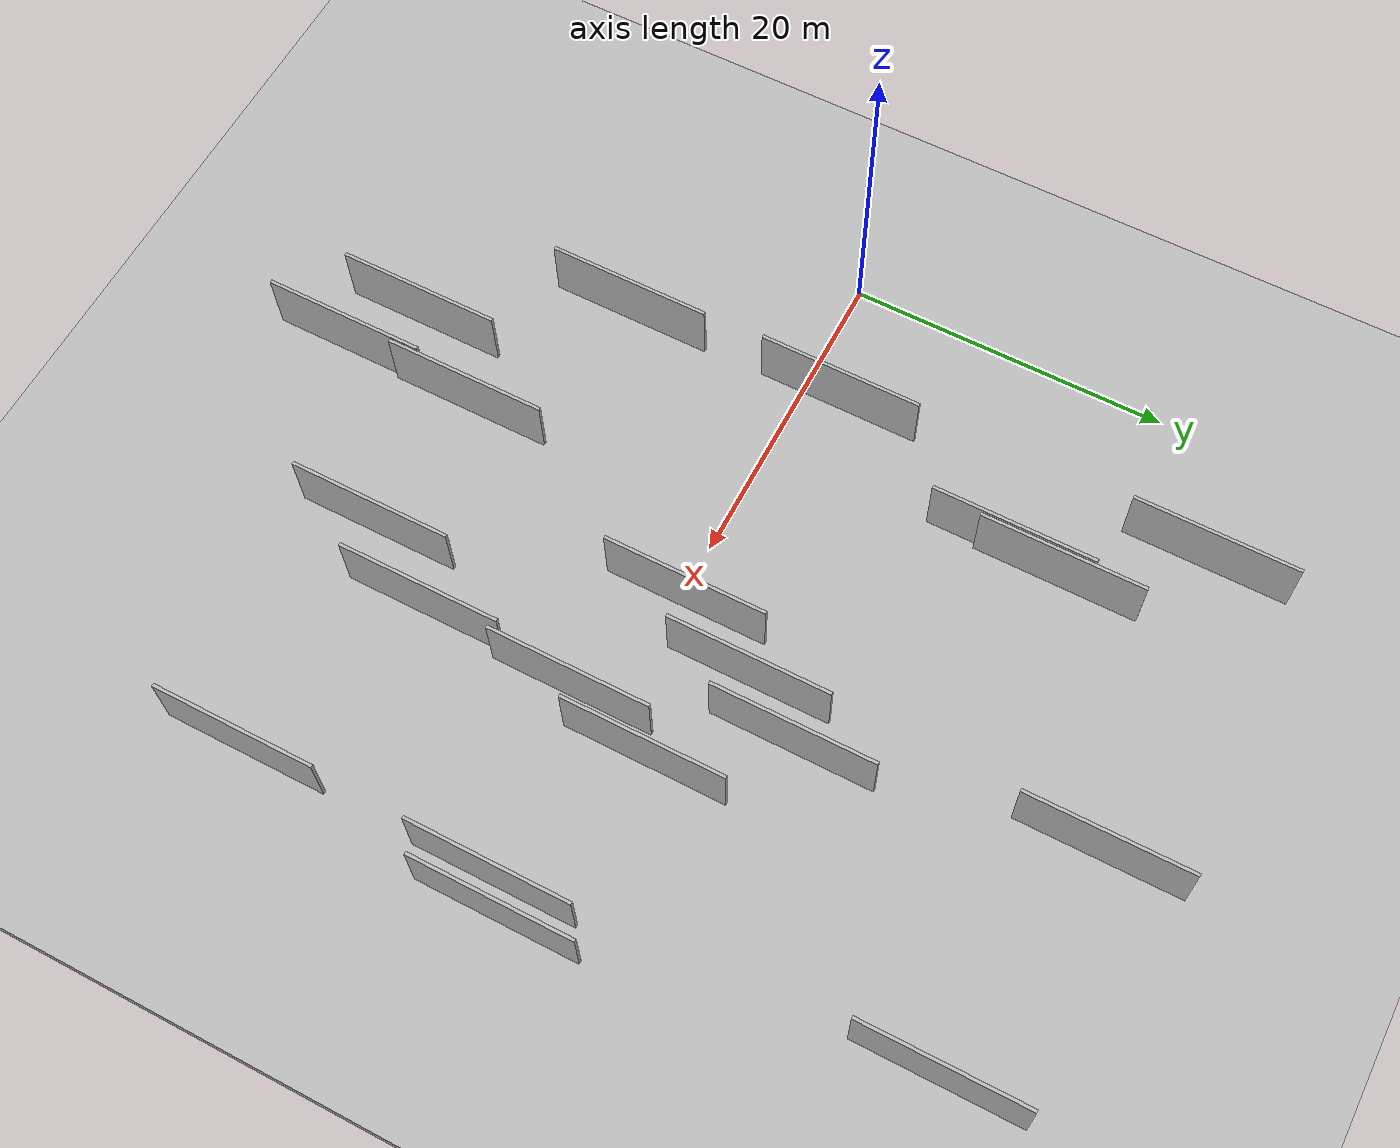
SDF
<?xml version="1.0" encoding="utf-8"?>

<sdf version="1.6">

   <world name="default">

      <gui fullscreen="0">

         <camera name="user_camera">

            <pose>-15 0 4.57585 0 0 0</pose>

            <view_controller>orbit</view_controller>

         </camera>

      </gui>

      <scene>

         <sky>

           <clouds>

             <speed>12</speed>

           </clouds>

         </sky>

         <ambient>0.4 0.4 0.4 1</ambient>

         <background>0.7 0.7 0.7 1</background>

         <shadows>1</shadows>

      </scene>

      <gravity>0 0 -9.8066</gravity>

      <magnetic_field>6e-06 2.3e-05 -4.2e-05</magnetic_field>

      <physics default="0" name="default_physics" type="ode">

         <ode>

            <solver>

               <type>quick</type>

               <iters>10</iters>

               <sor>1.0</sor>

               <use_dynamic_moi_rescaling>0</use_dynamic_moi_rescaling>

            </solver>

            <constraints>

               <cfm>0</cfm>

               <erp>0.2</erp>

               <contact_max_correcting_vel>100</contact_max_correcting_vel>

               <contact_surface_layer>0.001</contact_surface_layer>

            </constraints>

         </ode>

         <max_step_size>0.004</max_step_size>

         <real_time_factor>1</real_time_factor>

         <real_time_update_rate>250</real_time_update_rate>

      </physics>

      <light name="sun" type="directional">

         <cast_shadows>1</cast_shadows>

         <pose>0 0 10 0 0 0</pose>

         <diffuse>0.8 0.8 0.8 1</diffuse>

         <specular>0.2 0.2 0.2 1</specular>

         <attenuation>

            <range>1000</range>

            <constant>0.9</constant>

            <linear>0.01</linear>

            <quadratic>0.001</quadratic>

         </attenuation>

         <direction>-0.5 0.1 -0.9</direction>

      </light>

      <include>

         <name>ground_plane_1</name>

         <uri>model://HANNAS_ground_plane</uri>

         <pose>0 0 0  0 0 0</pose>

      </include>

      <include>

         <name>ground_plane_2</name>

         <uri>model://HANNAS_ground_plane</uri>

         <pose>100 0 0  0 0 0</pose>

      </include>

      <model name="HANNAS_wall_1">

         <static>1</static>

         <pose frame="">13.6870 15.7862 2.5 0.000000 0.000000 1.570796</pose>

         <link name="link">

            <pose frame="">0 0 2.00 0 0 0</pose>

            <collision name="collision">

               <geometry>

                  <box>

                     <size>10.00 0.2 4.00</size>

                  </box>

               </geometry>

               <max_contacts>10</max_contacts>

               <surface>

                  <contact>

                     <ode/>

                  </contact>

                  <bounce/>

                  <friction>

                     <torsional>

                        <ode/>

                     </torsional>

                     <ode/>

                  </friction>

               </surface>

            </collision>

            <visual name="visual">

               <cast_shadows>0</cast_shadows>

               <geometry>

                  <box>

                     <size>10.00 0.2 4.00</size>

                  </box>

               </geometry>

               <material>

                  <script>

                     <uri>model://HANNAS_wall/materials/scripts</uri>

                     <uri>model://HANNAS_wall/materials/textures</uri>

                     <name>vrc/HANNAS_wall</name>

                  </script>

               </material>

            </visual>

            <self_collide>0</self_collide>

            <enable_wind>0</enable_wind>

            <kinematic>0</kinematic>

         </link>

      </model>

      <model name="HANNAS_wall_2">

         <static>1</static>

         <pose frame="">28.8380 -16.5964 2.5 0.000000 0.000000 1.570796</pose>

         <link name="link">

            <pose frame="">0 0 2.00 0 0 0</pose>

            <collision name="collision">

               <geometry>

                  <box>

                     <size>10.00 0.2 4.00</size>

                  </box>

               </geometry>

               <max_contacts>10</max_contacts>

               <surface>

                  <contact>

                     <ode/>

                  </contact>

                  <bounce/>

                  <friction>

                     <torsional>

                        <ode/>

                     </torsional>

                     <ode/>

                  </friction>

               </surface>

            </collision>

            <visual name="visual">

               <cast_shadows>0</cast_shadows>

               <geometry>

                  <box>

                     <size>10.00 0.2 4.00</size>

                  </box>

               </geometry>

               <material>

                  <script>

                     <uri>model://HANNAS_wall/materials/scripts</uri>

                     <uri>model://HANNAS_wall/materials/textures</uri>

                     <name>vrc/HANNAS_wall</name>

                  </script>

               </material>

            </visual>

            <self_collide>0</self_collide>

            <enable_wind>0</enable_wind>

            <kinematic>0</kinematic>

         </link>

      </model>

      <model name="HANNAS_wall_3">

         <static>1</static>

         <pose frame="">19.1805 -24.3394 2.5 0.000000 0.000000 1.570796</pose>

         <link name="link">

            <pose frame="">0 0 2.00 0 0 0</pose>

            <collision name="collision">

               <geometry>

                  <box>

                     <size>10.00 0.2 4.00</size>

                  </box>

               </geometry>

               <max_contacts>10</max_contacts>

               <surface>

                  <contact>

                     <ode/>

                  </contact>

                  <bounce/>

                  <friction>

                     <torsional>

                        <ode/>

                     </torsional>

                     <ode/>

                  </friction>

               </surface>

            </collision>

            <visual name="visual">

               <cast_shadows>0</cast_shadows>

               <geometry>

                  <box>

                     <size>10.00 0.2 4.00</size>

                  </box>

               </geometry>

               <material>

                  <script>

                     <uri>model://HANNAS_wall/materials/scripts</uri>

                     <uri>model://HANNAS_wall/materials/textures</uri>

                     <name>vrc/HANNAS_wall</name>

                  </script>

               </material>

            </visual>

            <self_collide>0</self_collide>

            <enable_wind>0</enable_wind>

            <kinematic>0</kinematic>

         </link>

      </model>

      <model name="HANNAS_wall_4">

         <static>1</static>

         <pose frame="">45.4617 0.9145 2.5 0.000000 0.000000 1.570796</pose>

         <link name="link">

            <pose frame="">0 0 2.00 0 0 0</pose>

            <collision name="collision">

               <geometry>

                  <box>

                     <size>10.00 0.2 4.00</size>

                  </box>

               </geometry>

               <max_contacts>10</max_contacts>

               <surface>

                  <contact>

                     <ode/>

                  </contact>

                  <bounce/>

                  <friction>

                     <torsional>

                        <ode/>

                     </torsional>

                     <ode/>

                  </friction>

               </surface>

            </collision>

            <visual name="visual">

               <cast_shadows>0</cast_shadows>

               <geometry>

                  <box>

                     <size>10.00 0.2 4.00</size>

                  </box>

               </geometry>

               <material>

                  <script>

                     <uri>model://HANNAS_wall/materials/scripts</uri>

                     <uri>model://HANNAS_wall/materials/textures</uri>

                     <name>vrc/HANNAS_wall</name>

                  </script>

               </material>

            </visual>

            <self_collide>0</self_collide>

            <enable_wind>0</enable_wind>

            <kinematic>0</kinematic>

         </link>

      </model>

      <model name="HANNAS_wall_5">

         <static>1</static>

         <pose frame="">43.6676 -15.8494 2.5 0.000000 0.000000 1.570796</pose>

         <link name="link">

            <pose frame="">0 0 2.00 0 0 0</pose>

            <collision name="collision">

               <geometry>

                  <box>

                     <size>10.00 0.2 4.00</size>

                  </box>

               </geometry>

               <max_contacts>10</max_contacts>

               <surface>

                  <contact>

                     <ode/>

                  </contact>

                  <bounce/>

                  <friction>

                     <torsional>

                        <ode/>

                     </torsional>

                     <ode/>

                  </friction>

               </surface>

            </collision>

            <visual name="visual">

               <cast_shadows>0</cast_shadows>

               <geometry>

                  <box>

                     <size>10.00 0.2 4.00</size>

                  </box>

               </geometry>

               <material>

                  <script>

                     <uri>model://HANNAS_wall/materials/scripts</uri>

                     <uri>model://HANNAS_wall/materials/textures</uri>

                     <name>vrc/HANNAS_wall</name>

                  </script>

               </material>

            </visual>

            <self_collide>0</self_collide>

            <enable_wind>0</enable_wind>

            <kinematic>0</kinematic>

         </link>

      </model>

      <model name="HANNAS_wall_6">

         <static>1</static>

         <pose frame="">32.5299 -1.8773 2.5 0.000000 0.000000 1.570796</pose>

         <link name="link">

            <pose frame="">0 0 2.00 0 0 0</pose>

            <collision name="collision">

               <geometry>

                  <box>

                     <size>10.00 0.2 4.00</size>

                  </box>

               </geometry>

               <max_contacts>10</max_contacts>

               <surface>

                  <contact>

                     <ode/>

                  </contact>

                  <bounce/>

                  <friction>

                     <torsional>

                        <ode/>

                     </torsional>

                     <ode/>

                  </friction>

               </surface>

            </collision>

            <visual name="visual">

               <cast_shadows>0</cast_shadows>

               <geometry>

                  <box>

                     <size>10.00 0.2 4.00</size>

                  </box>

               </geometry>

               <material>

                  <script>

                     <uri>model://HANNAS_wall/materials/scripts</uri>

                     <uri>model://HANNAS_wall/materials/textures</uri>

                     <name>vrc/HANNAS_wall</name>

                  </script>

               </material>

            </visual>

            <self_collide>0</self_collide>

            <enable_wind>0</enable_wind>

            <kinematic>0</kinematic>

         </link>

      </model>

      <model name="HANNAS_wall_7">

         <static>1</static>

         <pose frame="">14.0009 18.8627 2.5 0.000000 0.000000 1.570796</pose>

         <link name="link">

            <pose frame="">0 0 2.00 0 0 0</pose>

            <collision name="collision">

               <geometry>

                  <box>

                     <size>10.00 0.2 4.00</size>

                  </box>

               </geometry>

               <max_contacts>10</max_contacts>

               <surface>

                  <contact>

                     <ode/>

                  </contact>

                  <bounce/>

                  <friction>

                     <torsional>

                        <ode/>

                     </torsional>

                     <ode/>

                  </friction>

               </surface>

            </collision>

            <visual name="visual">

               <cast_shadows>0</cast_shadows>

               <geometry>

                  <box>

                     <size>10.00 0.2 4.00</size>

                  </box>

               </geometry>

               <material>

                  <script>

                     <uri>model://HANNAS_wall/materials/scripts</uri>

                     <uri>model://HANNAS_wall/materials/textures</uri>

                     <name>vrc/HANNAS_wall</name>

                  </script>

               </material>

            </visual>

            <self_collide>0</self_collide>

            <enable_wind>0</enable_wind>

            <kinematic>0</kinematic>

         </link>

      </model>

      <model name="HANNAS_wall_8">

         <static>1</static>

         <pose frame="">15.5263 -21.5005 2.5 0.000000 0.000000 1.570796</pose>

         <link name="link">

            <pose frame="">0 0 2.00 0 0 0</pose>

            <collision name="collision">

               <geometry>

                  <box>

                     <size>10.00 0.2 4.00</size>

                  </box>

               </geometry>

               <max_contacts>10</max_contacts>

               <surface>

                  <contact>

                     <ode/>

                  </contact>

                  <bounce/>

                  <friction>

                     <torsional>

                        <ode/>

                     </torsional>

                     <ode/>

                  </friction>

               </surface>

            </collision>

            <visual name="visual">

               <cast_shadows>0</cast_shadows>

               <geometry>

                  <box>

                     <size>10.00 0.2 4.00</size>

                  </box>

               </geometry>

               <material>

                  <script>

                     <uri>model://HANNAS_wall/materials/scripts</uri>

                     <uri>model://HANNAS_wall/materials/textures</uri>

                     <name>vrc/HANNAS_wall</name>

                  </script>

               </material>

            </visual>

            <self_collide>0</self_collide>

            <enable_wind>0</enable_wind>

            <kinematic>0</kinematic>

         </link>

      </model>

      <model name="HANNAS_wall_9">

         <static>1</static>

         <pose frame="">19.4488 -16.0857 2.5 0.000000 0.000000 1.570796</pose>

         <link name="link">

            <pose frame="">0 0 2.00 0 0 0</pose>

            <collision name="collision">

               <geometry>

                  <box>

                     <size>10.00 0.2 4.00</size>

                  </box>

               </geometry>

               <max_contacts>10</max_contacts>

               <surface>

                  <contact>

                     <ode/>

                  </contact>

                  <bounce/>

                  <friction>

                     <torsional>

                        <ode/>

                     </torsional>

                     <ode/>

                  </friction>

               </surface>

            </collision>

            <visual name="visual">

               <cast_shadows>0</cast_shadows>

               <geometry>

                  <box>

                     <size>10.00 0.2 4.00</size>

                  </box>

               </geometry>

               <material>

                  <script>

                     <uri>model://HANNAS_wall/materials/scripts</uri>

                     <uri>model://HANNAS_wall/materials/textures</uri>

                     <name>vrc/HANNAS_wall</name>

                  </script>

               </material>

            </visual>

            <self_collide>0</self_collide>

            <enable_wind>0</enable_wind>

            <kinematic>0</kinematic>

         </link>

      </model>

      <model name="HANNAS_wall_10">

         <static>1</static>

         <pose frame="">24.8683 1.1227 2.5 0.000000 0.000000 1.570796</pose>

         <link name="link">

            <pose frame="">0 0 2.00 0 0 0</pose>

            <collision name="collision">

               <geometry>

                  <box>

                     <size>10.00 0.2 4.00</size>

                  </box>

               </geometry>

               <max_contacts>10</max_contacts>

               <surface>

                  <contact>

                     <ode/>

                  </contact>

                  <bounce/>

                  <friction>

                     <torsional>

                        <ode/>

                     </torsional>

                     <ode/>

                  </friction>

               </surface>

            </collision>

            <visual name="visual">

               <cast_shadows>0</cast_shadows>

               <geometry>

                  <box>

                     <size>10.00 0.2 4.00</size>

                  </box>

               </geometry>

               <material>

                  <script>

                     <uri>model://HANNAS_wall/materials/scripts</uri>

                     <uri>model://HANNAS_wall/materials/textures</uri>

                     <name>vrc/HANNAS_wall</name>

                  </script>

               </material>

            </visual>

            <self_collide>0</self_collide>

            <enable_wind>0</enable_wind>

            <kinematic>0</kinematic>

         </link>

      </model>

      <model name="HANNAS_wall_11">

         <static>1</static>

         <pose frame="">42.5177 24.9305 2.5 0.000000 0.000000 1.570796</pose>

         <link name="link">

            <pose frame="">0 0 2.00 0 0 0</pose>

            <collision name="collision">

               <geometry>

                  <box>

                     <size>10.00 0.2 4.00</size>

                  </box>

               </geometry>

               <max_contacts>10</max_contacts>

               <surface>

                  <contact>

                     <ode/>

                  </contact>

                  <bounce/>

                  <friction>

                     <torsional>

                        <ode/>

                     </torsional>

                     <ode/>

                  </friction>

               </surface>

            </collision>

            <visual name="visual">

               <cast_shadows>0</cast_shadows>

               <geometry>

                  <box>

                     <size>10.00 0.2 4.00</size>

                  </box>

               </geometry>

               <material>

                  <script>

                     <uri>model://HANNAS_wall/materials/scripts</uri>

                     <uri>model://HANNAS_wall/materials/textures</uri>

                     <name>vrc/HANNAS_wall</name>

                  </script>

               </material>

            </visual>

            <self_collide>0</self_collide>

            <enable_wind>0</enable_wind>

            <kinematic>0</kinematic>

         </link>

      </model>

      <model name="HANNAS_wall_12">

         <static>1</static>

         <pose frame="">43.8625 -0.1990 2.5 0.000000 0.000000 1.570796</pose>

         <link name="link">

            <pose frame="">0 0 2.00 0 0 0</pose>

            <collision name="collision">

               <geometry>

                  <box>

                     <size>10.00 0.2 4.00</size>

                  </box>

               </geometry>

               <max_contacts>10</max_contacts>

               <surface>

                  <contact>

                     <ode/>

                  </contact>

                  <bounce/>

                  <friction>

                     <torsional>

                        <ode/>

                     </torsional>

                     <ode/>

                  </friction>

               </surface>

            </collision>

            <visual name="visual">

               <cast_shadows>0</cast_shadows>

               <geometry>

                  <box>

                     <size>10.00 0.2 4.00</size>

                  </box>

               </geometry>

               <material>

                  <script>

                     <uri>model://HANNAS_wall/materials/scripts</uri>

                     <uri>model://HANNAS_wall/materials/textures</uri>

                     <name>vrc/HANNAS_wall</name>

                  </script>

               </material>

            </visual>

            <self_collide>0</self_collide>

            <enable_wind>0</enable_wind>

            <kinematic>0</kinematic>

         </link>

      </model>

      <model name="HANNAS_wall_13">

         <static>1</static>

         <pose frame="">27.7871 27.4465 2.5 0.000000 0.000000 1.570796</pose>

         <link name="link">

            <pose frame="">0 0 2.00 0 0 0</pose>

            <collision name="collision">

               <geometry>

                  <box>

                     <size>10.00 0.2 4.00</size>

                  </box>

               </geometry>

               <max_contacts>10</max_contacts>

               <surface>

                  <contact>

                     <ode/>

                  </contact>

                  <bounce/>

                  <friction>

                     <torsional>

                        <ode/>

                     </torsional>

                     <ode/>

                  </friction>

               </surface>

            </collision>

            <visual name="visual">

               <cast_shadows>0</cast_shadows>

               <geometry>

                  <box>

                     <size>10.00 0.2 4.00</size>

                  </box>

               </geometry>

               <material>

                  <script>

                     <uri>model://HANNAS_wall/materials/scripts</uri>

                     <uri>model://HANNAS_wall/materials/textures</uri>

                     <name>vrc/HANNAS_wall</name>

                  </script>

               </material>

            </visual>

            <self_collide>0</self_collide>

            <enable_wind>0</enable_wind>

            <kinematic>0</kinematic>

         </link>

      </model>

      <model name="HANNAS_wall_14">

         <static>1</static>

         <pose frame="">27.4650 6.3852 2.5 0.000000 0.000000 1.570796</pose>

         <link name="link">

            <pose frame="">0 0 2.00 0 0 0</pose>

            <collision name="collision">

               <geometry>

                  <box>

                     <size>10.00 0.2 4.00</size>

                  </box>

               </geometry>

               <max_contacts>10</max_contacts>

               <surface>

                  <contact>

                     <ode/>

                  </contact>

                  <bounce/>

                  <friction>

                     <torsional>

                        <ode/>

                     </torsional>

                     <ode/>

                  </friction>

               </surface>

            </collision>

            <visual name="visual">

               <cast_shadows>0</cast_shadows>

               <geometry>

                  <box>

                     <size>10.00 0.2 4.00</size>

                  </box>

               </geometry>

               <material>

                  <script>

                     <uri>model://HANNAS_wall/materials/scripts</uri>

                     <uri>model://HANNAS_wall/materials/textures</uri>

                     <name>vrc/HANNAS_wall</name>

                  </script>

               </material>

            </visual>

            <self_collide>0</self_collide>

            <enable_wind>0</enable_wind>

            <kinematic>0</kinematic>

         </link>

      </model>

      <model name="HANNAS_wall_15">

         <static>1</static>

         <pose frame="">9.4506 -10.8042 2.5 0.000000 0.000000 1.570796</pose>

         <link name="link">

            <pose frame="">0 0 2.00 0 0 0</pose>

            <collision name="collision">

               <geometry>

                  <box>

                     <size>10.00 0.2 4.00</size>

                  </box>

               </geometry>

               <max_contacts>10</max_contacts>

               <surface>

                  <contact>

                     <ode/>

                  </contact>

                  <bounce/>

                  <friction>

                     <torsional>

                        <ode/>

                     </torsional>

                     <ode/>

                  </friction>

               </surface>

            </collision>

            <visual name="visual">

               <cast_shadows>0</cast_shadows>

               <geometry>

                  <box>

                     <size>10.00 0.2 4.00</size>

                  </box>

               </geometry>

               <material>

                  <script>

                     <uri>model://HANNAS_wall/materials/scripts</uri>

                     <uri>model://HANNAS_wall/materials/textures</uri>

                     <name>vrc/HANNAS_wall</name>

                  </script>

               </material>

            </visual>

            <self_collide>0</self_collide>

            <enable_wind>0</enable_wind>

            <kinematic>0</kinematic>

         </link>

      </model>

      <model name="HANNAS_wall_16">

         <static>1</static>

         <pose frame="">34.2249 3.5902 2.5 0.000000 0.000000 1.570796</pose>

         <link name="link">

            <pose frame="">0 0 2.00 0 0 0</pose>

            <collision name="collision">

               <geometry>

                  <box>

                     <size>10.00 0.2 4.00</size>

                  </box>

               </geometry>

               <max_contacts>10</max_contacts>

               <surface>

                  <contact>

                     <ode/>

                  </contact>

                  <bounce/>

                  <friction>

                     <torsional>

                        <ode/>

                     </torsional>

                     <ode/>

                  </friction>

               </surface>

            </collision>

            <visual name="visual">

               <cast_shadows>0</cast_shadows>

               <geometry>

                  <box>

                     <size>10.00 0.2 4.00</size>

                  </box>

               </geometry>

               <material>

                  <script>

                     <uri>model://HANNAS_wall/materials/scripts</uri>

                     <uri>model://HANNAS_wall/materials/textures</uri>

                     <name>vrc/HANNAS_wall</name>

                  </script>

               </material>

            </visual>

            <self_collide>0</self_collide>

            <enable_wind>0</enable_wind>

            <kinematic>0</kinematic>

         </link>

      </model>

      <model name="HANNAS_wall_17">

         <static>1</static>

         <pose frame="">9.2665 2.8877 2.5 0.000000 0.000000 1.570796</pose>

         <link name="link">

            <pose frame="">0 0 2.00 0 0 0</pose>

            <collision name="collision">

               <geometry>

                  <box>

                     <size>10.00 0.2 4.00</size>

                  </box>

               </geometry>

               <max_contacts>10</max_contacts>

               <surface>

                  <contact>

                     <ode/>

                  </contact>

                  <bounce/>

                  <friction>

                     <torsional>

                        <ode/>

                     </torsional>

                     <ode/>

                  </friction>

               </surface>

            </collision>

            <visual name="visual">

               <cast_shadows>0</cast_shadows>

               <geometry>

                  <box>

                     <size>10.00 0.2 4.00</size>

                  </box>

               </geometry>

               <material>

                  <script>

                     <uri>model://HANNAS_wall/materials/scripts</uri>

                     <uri>model://HANNAS_wall/materials/textures</uri>

                     <name>vrc/HANNAS_wall</name>

                  </script>

               </material>

            </visual>

            <self_collide>0</self_collide>

            <enable_wind>0</enable_wind>

            <kinematic>0</kinematic>

         </link>

      </model>

      <model name="HANNAS_wall_18">

         <static>1</static>

         <pose frame="">29.8849 10.2765 2.5 0.000000 0.000000 1.570796</pose>

         <link name="link">

            <pose frame="">0 0 2.00 0 0 0</pose>

            <collision name="collision">

               <geometry>

                  <box>

                     <size>10.00 0.2 4.00</size>

                  </box>

               </geometry>

               <max_contacts>10</max_contacts>

               <surface>

                  <contact>

                     <ode/>

                  </contact>

                  <bounce/>

                  <friction>

                     <torsional>

                        <ode/>

                     </torsional>

                     <ode/>

                  </friction>

               </surface>

            </collision>

            <visual name="visual">

               <cast_shadows>0</cast_shadows>

               <geometry>

                  <box>

                     <size>10.00 0.2 4.00</size>

                  </box>

               </geometry>

               <material>

                  <script>

                     <uri>model://HANNAS_wall/materials/scripts</uri>

                     <uri>model://HANNAS_wall/materials/textures</uri>

                     <name>vrc/HANNAS_wall</name>

                  </script>

               </material>

            </visual>

            <self_collide>0</self_collide>

            <enable_wind>0</enable_wind>

            <kinematic>0</kinematic>

         </link>

      </model>

      <model name="HANNAS_wall_19">

         <static>1</static>

         <pose frame="">31.9651 -11.5423 2.5 0.000000 0.000000 1.570796</pose>

         <link name="link">

            <pose frame="">0 0 2.00 0 0 0</pose>

            <collision name="collision">

               <geometry>

                  <box>

                     <size>10.00 0.2 4.00</size>

                  </box>

               </geometry>

               <max_contacts>10</max_contacts>

               <surface>

                  <contact>

                     <ode/>

                  </contact>

                  <bounce/>

                  <friction>

                     <torsional>

                        <ode/>

                     </torsional>

                     <ode/>

                  </friction>

               </surface>

            </collision>

            <visual name="visual">

               <cast_shadows>0</cast_shadows>

               <geometry>

                  <box>

                     <size>10.00 0.2 4.00</size>

                  </box>

               </geometry>

               <material>

                  <script>

                     <uri>model://HANNAS_wall/materials/scripts</uri>

                     <uri>model://HANNAS_wall/materials/textures</uri>

                     <name>vrc/HANNAS_wall</name>

                  </script>

               </material>

            </visual>

            <self_collide>0</self_collide>

            <enable_wind>0</enable_wind>

            <kinematic>0</kinematic>

         </link>

      </model>

      <model name="HANNAS_wall_20">

         <static>1</static>

         <pose frame="">9.1116 25.9473 2.5 0.000000 0.000000 1.570796</pose>

         <link name="link">

            <pose frame="">0 0 2.00 0 0 0</pose>

            <collision name="collision">

               <geometry>

                  <box>

                     <size>10.00 0.2 4.00</size>

                  </box>

               </geometry>

               <max_contacts>10</max_contacts>

               <surface>

                  <contact>

                     <ode/>

                  </contact>

                  <bounce/>

                  <friction>

                     <torsional>

                        <ode/>

                     </torsional>

                     <ode/>

                  </friction>

               </surface>

            </collision>

            <visual name="visual">

               <cast_shadows>0</cast_shadows>

               <geometry>

                  <box>

                     <size>10.00 0.2 4.00</size>

                  </box>

               </geometry>

               <material>

                  <script>

                     <uri>model://HANNAS_wall/materials/scripts</uri>

                     <uri>model://HANNAS_wall/materials/textures</uri>

                     <name>vrc/HANNAS_wall</name>

                  </script>

               </material>

            </visual>

            <self_collide>0</self_collide>

            <enable_wind>0</enable_wind>

            <kinematic>0</kinematic>

         </link>

      </model>

   </world>

</sdf>

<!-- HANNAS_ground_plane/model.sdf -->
<sdf version="1.4">
<model name="HANNAS_ground_plane">
  <static>true</static>
    <link name="link">
      <collision name="collision">
        <geometry>
          <plane>
            <normal>0 0 1</normal>
            <size>1000 1000</size>
          </plane>
        </geometry>
        <surface>
          <friction>
            <ode>
              <mu>100</mu>
              <mu2>50</mu2>
            </ode>
          </friction>
        </surface>
      </collision>
      <visual name="visual">
        <cast_shadows>false</cast_shadows>
        <geometry>
          <plane>
            <normal>0 0 1</normal>
            <size>1000 1000</size>
          </plane>
        </geometry>
        <material>
          <script>
            <uri>model://HANNAS_ground_plane/materials/scripts/HANNAS_ground_plane.material</uri>
	    <uri>model://HANNAS_ground_plane/materials/textures</uri>
            <name>HANNASGroundPlane/Image</name>
          </script>
        </material>
      </visual>
    </link>
  </model>
</sdf>
